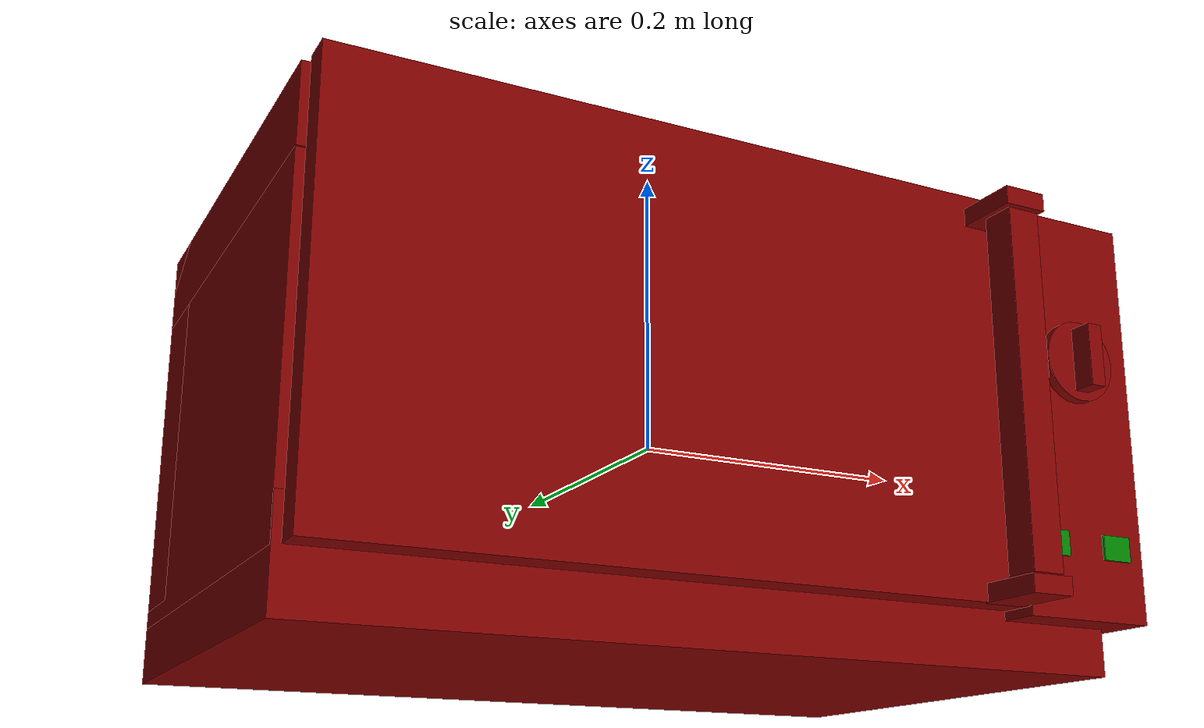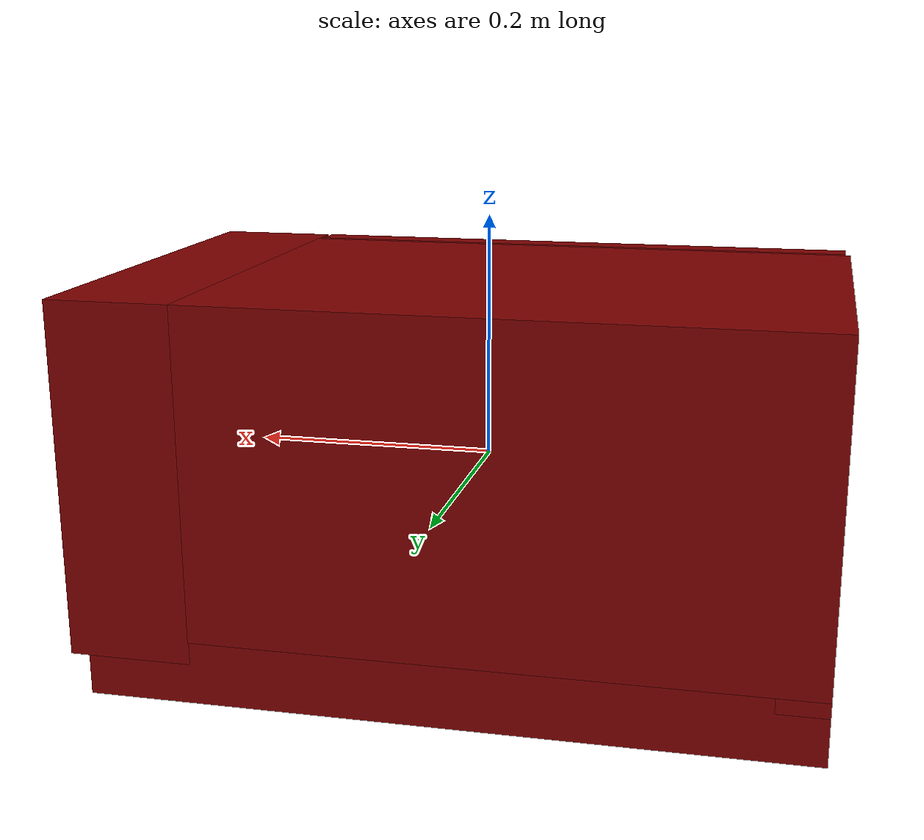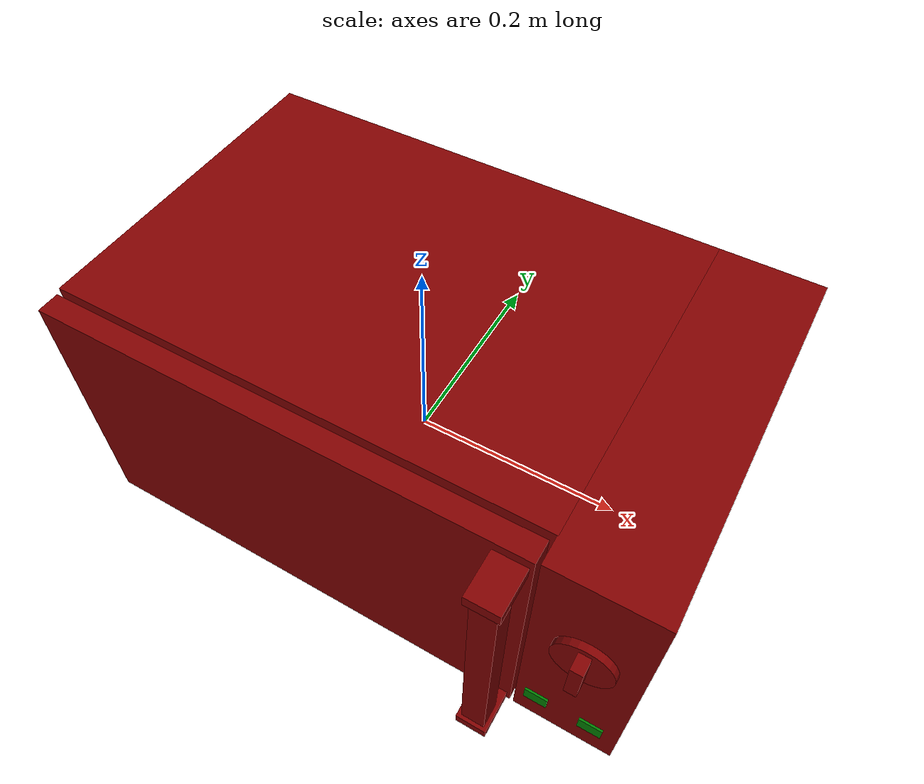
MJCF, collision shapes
<mujoco model="model">
  <compiler angle="radian"/>
  <asset>
    <mesh file="visuals/door.obj" name="door_vis"/>
    <mesh file="visuals/door_Clear.obj" name="door_Clear_vis"/>
    <mesh file="visuals/Body001.obj" name="Body001_vis"/>
    <mesh file="visuals/Disc001.obj" name="Disc001_vis"/>
    <mesh file="visuals/Knob001.obj" name="Knob001_vis"/>
    <texture file="visuals/T_BC001.png" name="Body001_material" type="2d"/>
    <material name="Body001_material" rgba="1 1 1 1.0" texture="Body001_material" shininess="0.141421377658844" specular="0.3103448502657381"/>
    <texture file="visuals/T_BC001.png" name="door_material" type="2d"/>
    <material name="door_material" rgba="1 1 1 1.0" texture="door_material" shininess="0.141421377658844" specular="0.3103448502657381"/>
    <material name="door_Clear_material" rgba="0.11236722767353058 0.11236722767353058 0.11236722767353058 0.800000011920929" shininess="0.141421377658844" specular="0.3103448502657381"/>
    <texture file="visuals/T_BC001.png" name="Disc001_material" type="2d"/>
    <material name="Disc001_material" rgba="1 1 1 1.0" texture="Disc001_material" shininess="0.141421377658844" specular="0.3103448502657381"/>
    <texture file="visuals/T_BC001.png" name="Knob001_material" type="2d"/>
    <material name="Knob001_material" rgba="1 1 1 1.0" texture="Knob001_material" shininess="0.141421377658844" specular="0.3103448502657381"/>
  </asset>
  <default>
    <default class="visual">
      <geom conaffinity="0" contype="0" group="1" type="mesh"/>
    </default>
    <default class="collision">
      <geom group="0" rgba="0.5 0 0 0.5"/>
    </default>
    <default class="spawn">
      <geom group="0" rgba="1 1 1 0.5" contype="0" conaffinity="0"/>
      <site group="0" rgba="1 1 1 0.5"/>
    </default>
    <default class="region">
      <geom group="1" conaffinity="0" contype="0" rgba="0 1 0 0"/>
    </default>
  </default>
  <worldbody>
    <body>
      <body name="object">
        <geom class="collision" type="box" pos="-0.027484 0.014830 -0.076785" size="0.10370288044214249 0.10370288044214249 0.002892629010602832" quat="1.0 0.0 0.0 0.0" name="tray" rgba="0 1 0 0.5"/>
        <geom class="collision" type="box" pos="0.263526 -0.164028 -0.075095" size="0.011117514222860336 0.0010596554493531585 0.008312597870826721" quat="1.0 0.0 0.0 0.0" name="start_button" rgba="0.0 0.5 0 0.5"/>
        <geom class="collision" type="box" pos="0.211202 -0.164028 -0.075095" size="0.011117514222860336 0.0010596554493531585 0.008312597870826721" quat="1.0 0.0 0.0 0.0" name="stop_button" rgba="0.0 0.5 0 0.5"/>
        <geom mesh="Body001_vis" type="mesh" solimp="0.998 0.998 0.001" solref="0.001 1" density="100" friction="0.95 0.3 0.1" class="visual" material="Body001_material"/>
        <geom class="collision" type="box" pos="-0.269644 0.035873 0.019009" size="0.019485829398036003 0.16863562166690826 0.1369577944278717" quat="1.0 0.0 0.0 0.0"/>
        <geom class="collision" type="box" pos="-0.007556 0.035123 -0.122352" size="0.2815733551979065 0.16938550770282745 0.033614546060562134" quat="1.0 0.0 0.0 0.0"/>
        <geom class="collision" type="box" pos="-0.048827 0.174518 0.024982" size="0.24030300974845886 0.02999093569815159 0.13098469376564026" quat="1.0 0.0 0.0 0.0"/>
        <geom class="collision" type="box" pos="-0.048827 0.035123 0.130154" size="0.24030300974845886 0.16938550770282745 0.02581334114074707" quat="1.0 0.0 0.0 0.0"/>
        <geom class="collision" type="box" pos="0.239859 0.021989 0.016039" size="0.04927029088139534 0.18251977860927582 0.1399276852607727" quat="1.0 0.0 0.0 0.0"/>
        <geom class="collision" type="box" pos="0.183345 0.033277 0.004183" size="0.00943115446716547 0.1712314784526825 0.10319332033395767" quat="1.0 0.0 0.0 0.0"/>
        <body name="door">
          <joint axis="0.0 0.0 1.0" pos="-0.275740 -0.149044 0.017009" limited="true" name="microjoint" range="-1.5707963267948966 0.0" type="hinge" damping="1" frictionloss="1" armature=".01" stiffness="0.05"/>
          <geom mesh="door_vis" type="mesh" solimp="0.998 0.998 0.001" solref="0.001 1" density="100" friction="0.95 0.3 0.1" class="visual" material="door_material"/>
          <geom class="collision" type="box" pos="-0.048898 -0.151379 0.018715" size="0.23626533150672913 0.010893288068473339 0.137252077460289" quat="1.0 0.0 0.0 0.0"/>
          <geom class="collision" type="box" pos="0.168535 -0.181670 0.140143" size="0.015192454680800438 0.02292822301387787 0.006079103797674179" quat="1.0 0.0 0.0 0.0"/>
          <geom class="collision" type="box" pos="0.168535 -0.181670 -0.112644" size="0.015192454680800438 0.02292822301387787 0.006079103797674179" quat="1.0 0.0 0.0 0.0"/>
          <geom class="collision" type="box" pos="0.168788 -0.189858 0.014219" size="0.011586899869143963 0.011559391394257545 0.11917122453451157" quat="1.0 0.0 0.0 0.0" name="door_handle"/>
          <body name="door_Clear">
            <geom mesh="door_Clear_vis" type="mesh" solimp="0.998 0.998 0.001" solref="0.001 1" density="100" friction="0.95 0.3 0.1" class="visual" material="door_Clear_material"/>
            <geom class="collision" type="box" pos="-0.037881 -0.155533 0.007549" size="0.2249724417924881 0.006078073754906654 0.10516265779733658" quat="1.0 0.0 0.0 0.0"/>
          </body>
        </body>
        <body name="Disc001">
          <joint axis="0.0 0.0 1.0" pos="-0.027484 0.014830 -0.082162" limited="false" name="Disc001_joint" range="0 360" type="hinge" damping="1" frictionloss="1" armature=".01" stiffness="0.05"/>
          <geom mesh="Disc001_vis" type="mesh" solimp="0.998 0.998 0.001" solref="0.001 1" density="100" friction="0.95 0.3 0.1" class="visual" material="Disc001_material"/>
          <geom class="collision" type="cylinder" pos="-0.027484 0.014830 -0.084570" size="0.10370320081710815 0.003213750896975398" quat="1.0 0.0 0.0 0.0"/>
        </body>
        <body name="Knob001">
          <joint axis="0.0 1.0 -1.6292067073209182e-07" pos="0.240033 -0.171932 0.050838" limited="true" name="Knob001_joint" range="0.0 4.886921905584122" type="hinge" damping="0.05" armature="0.001" springref="-0.01"/>
          <geom mesh="Knob001_vis" type="mesh" solimp="0.998 0.998 0.001" solref="0.001 1" density="100" friction="0.95 0.3 0.1" class="visual" material="Knob001_material"/>
          <geom class="collision" type="cylinder" pos="0.240101 -0.165252 0.050739" size="0.027829408645629883 0.0035372916609048843" quat="0.7071067094802856 0.7071068286895752 0.0 0.0"/>
          <geom class="collision" type="box" pos="0.239936 -0.176613 0.050821" size="0.005633186548948288 0.007871289737522602 0.021454887464642525" quat="1.0 0.0 0.0 0.0"/>
        </body>
        <geom class="region" name="reg_main" type="box" pos="-4.999999999866223e-07 0.021399 0.0" size="0.28912950000000004 0.183109 0.155967"/>
        <geom class="region" name="reg_int" type="box" pos="-0.0373445 0.007754999999999998 0.007504500000000004" size="0.2135015 0.14188 0.09982250000000001"/>
      </body>
    </body>
  </worldbody>
  <actuator>
    <motor name="microjoint_actuator" joint="microjoint" gear="10"/>
    <motor name="Disc001_joint_actuator" joint="Disc001_joint" gear="10"/>
    <motor name="Knob001_joint_actuator" joint="Knob001_joint" gear="10"/>
  </actuator>
</mujoco>
